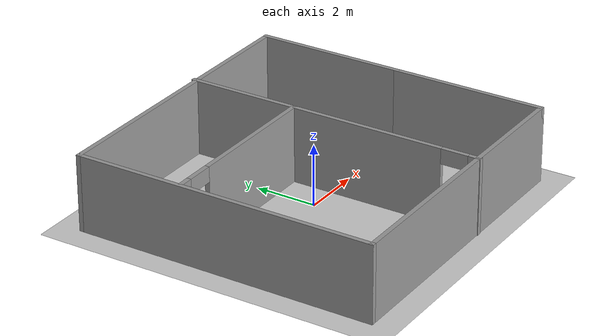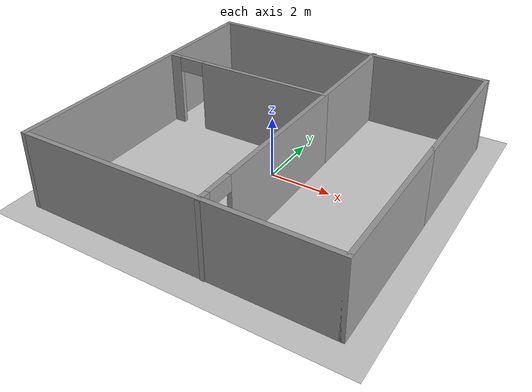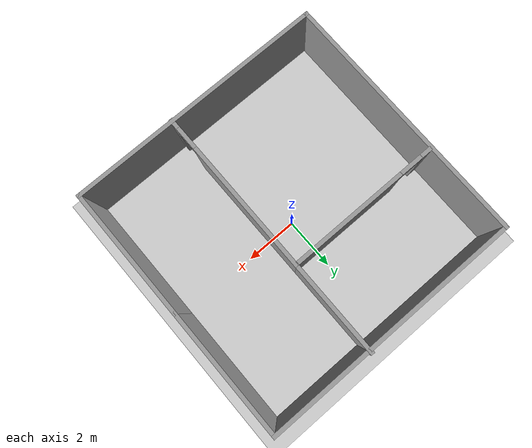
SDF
<sdf version="1.7">
 <world name="default">
  <light name="sun" type="directional">
   <pose>0 0 10 0 -0 0</pose>
   <diffuse>0.8 0.8 0.8 1</diffuse>
   <specular>0.2 0.2 0.2 1</specular>
   <attenuation>
    <range>1000</range>
    <constant>0.9</constant>
    <linear>0.01</linear>
    <quadratic>0.001</quadratic>
   </attenuation>
   <direction>-0.5 0.1 -0.9</direction>
   <spot><inner_angle>0</inner_angle><outer_angle>0</outer_angle><falloff>0</falloff></spot>
  </light>
  <model name="ground_plane">
   <static>1</static>
   <link name="link">
    <collision name="collision">
     <geometry><plane><normal>0 0 1</normal><size>100 100</size></plane></geometry>
     <surface><friction><ode><mu>100</mu><mu2>50</mu2></ode></friction></surface>
    </collision>
    <visual name="visual">
     <cast_shadows>0</cast_shadows>
     <geometry><plane><normal>0 0 1</normal><size>100 100</size></plane></geometry>
     <material>
      <script><uri>file://media/materials/scripts/gazebo.material</uri><name>Gazebo/Grey</name></script>
     </material>
    </visual>
   </link>
  </model>
  <gravity>0 0 -9.8</gravity>
  <magnetic_field>6e-06 2.3e-05 -4.2e-05</magnetic_field>
  <atmosphere type="adiabatic"/>
  <physics type="ode">
   <max_step_size>0.001</max_step_size>
   <real_time_factor>1</real_time_factor>
   <real_time_update_rate>1000</real_time_update_rate>
  </physics>
  <scene><ambient>0.4 0.4 0.4 1</ambient><background>0.7 0.7 0.7 1</background><shadows>1</shadows></scene>
  <audio><device>default</device></audio>
  <spherical_coordinates>
   <surface_model>EARTH_WGS84</surface_model>
   <latitude_deg>0</latitude_deg>
   <longitude_deg>0</longitude_deg>
   <elevation>0</elevation>
   <heading_deg>0</heading_deg>
  </spherical_coordinates>
  <model name="10_x_10_Cleaning">
   <pose>0.003482 0.003116 0 0 -0 0</pose>
   <link name="Wall_10">
    <pose>-1.89866 1.375 0 0 -0 0</pose>
    <visual name="Wall_10_Visual_0">
     <pose>-2.78087 0 1.25 0 -0 0</pose>
     <geometry><box><size>0.438253 0.15 2.5</size></box></geometry>
     <material>
      <script><uri>file://media/materials/scripts/gazebo.material</uri><name>Gazebo/Grey</name></script>
      <ambient>1 1 1 1</ambient>
     </material>
     <meta><layer>0</layer></meta>
    </visual>
    <collision name="Wall_10_Collision_0">
     <geometry><box><size>0.438253 0.15 2.5</size></box></geometry>
     <pose>-2.78087 0 1.25 0 -0 0</pose>
    </collision>
    <visual name="Wall_10_Visual_1">
     <pose>0.669126 0 1.25 0 -0 0</pose>
     <geometry><box><size>4.66175 0.15 2.5</size></box></geometry>
     <material>
      <script><uri>file://media/materials/scripts/gazebo.material</uri><name>Gazebo/Grey</name></script>
      <ambient>1 1 1 1</ambient>
     </material>
     <meta><layer>0</layer></meta>
    </visual>
    <collision name="Wall_10_Collision_1">
     <geometry><box><size>4.66175 0.15 2.5</size></box></geometry>
     <pose>0.669126 0 1.25 0 -0 0</pose>
    </collision>
    <visual name="Wall_10_Visual_2">
     <pose>-2.11175 0 2.25 0 -0 0</pose>
     <geometry><box><size>0.9 0.15 0.5</size></box></geometry>
     <material>
      <script><uri>file://media/materials/scripts/gazebo.material</uri><name>Gazebo/Grey</name></script>
      <ambient>1 1 1 1</ambient>
     </material>
     <meta><layer>0</layer></meta>
    </visual>
    <collision name="Wall_10_Collision_2">
     <geometry><box><size>0.9 0.15 0.5</size></box></geometry>
     <pose>-2.11175 0 2.25 0 -0 0</pose>
    </collision>
   </link>
   <link name="Wall_11">
    <pose>1.02634 -1.8 0 0 -0 -1.5708</pose>
    <visual name="Wall_11_Visual_0">
     <pose>-0.65376 0 1.25 0 -0 0</pose>
     <geometry><box><size>5.19248 0.15 2.5</size></box></geometry>
     <material>
      <script><uri>file://media/materials/scripts/gazebo.material</uri><name>Gazebo/Grey</name></script>
      <ambient>1 1 1 1</ambient>
     </material>
     <meta><layer>0</layer></meta>
    </visual>
    <collision name="Wall_11_Collision_0">
     <geometry><box><size>5.19248 0.15 2.5</size></box></geometry>
     <pose>-0.65376 0 1.25 0 -0 0</pose>
    </collision>
    <visual name="Wall_11_Visual_1">
     <pose>3.04624 0 1.25 0 -0 0</pose>
     <geometry><box><size>0.40752 0.15 2.5</size></box></geometry>
     <material>
      <script><uri>file://media/materials/scripts/gazebo.material</uri><name>Gazebo/Grey</name></script>
      <ambient>1 1 1 1</ambient>
     </material>
     <meta><layer>0</layer></meta>
    </visual>
    <collision name="Wall_11_Collision_1">
     <geometry><box><size>0.40752 0.15 2.5</size></box></geometry>
     <pose>3.04624 0 1.25 0 -0 0</pose>
    </collision>
    <visual name="Wall_11_Visual_2">
     <pose>2.39248 0 2.25 0 -0 0</pose>
     <geometry><box><size>0.9 0.15 0.5</size></box></geometry>
     <material>
      <script><uri>file://media/materials/scripts/gazebo.material</uri><name>Gazebo/Grey</name></script>
      <ambient>1 1 1 1</ambient>
     </material>
     <meta><layer>0</layer></meta>
    </visual>
    <collision name="Wall_11_Collision_2">
     <geometry><box><size>0.9 0.15 0.5</size></box></geometry>
     <pose>2.39248 0 2.25 0 -0 0</pose>
    </collision>
   </link>
   <link name="Wall_13">
    <collision name="Wall_13_Collision">
     <geometry><box><size>3.75 0.15 2.5</size></box></geometry>
     <pose>0 0 1.25 0 -0 0</pose>
    </collision>
    <visual name="Wall_13_Visual">
     <pose>0 0 1.25 0 -0 0</pose>
     <geometry><box><size>3.75 0.15 2.5</size></box></geometry>
     <material>
      <script><uri>file://media/materials/scripts/gazebo.material</uri><name>Gazebo/Grey</name></script>
      <ambient>1 1 1 1</ambient>
     </material>
     <meta><layer>0</layer></meta>
    </visual>
    <pose>1.02634 3.175 0 0 -0 1.5708</pose>
   </link>
   <link name="Wall_3">
    <collision name="Wall_3_Collision">
     <geometry><box><size>5 0.15 2.5</size></box></geometry>
     <pose>0 0 1.25 0 -0 0</pose>
    </collision>
    <visual name="Wall_3_Visual">
     <pose>0 0 1.25 0 -0 0</pose>
     <geometry><box><size>5 0.15 2.5</size></box></geometry>
     <material>
      <script><uri>file://media/materials/scripts/gazebo.material</uri><name>Gazebo/Grey</name></script>
      <ambient>1 1 1 1</ambient>
     </material>
     <meta><layer>0</layer></meta>
    </visual>
    <pose>4.925 2.472 0 0 -0 1.5708</pose>
   </link>
   <link name="Wall_4">
    <collision name="Wall_4_Collision">
     <geometry><box><size>10 0.15 2.5</size></box></geometry>
     <pose>0 0 1.25 0 -0 0</pose>
    </collision>
    <visual name="Wall_4_Visual">
     <pose>0 0 1.25 0 -0 0</pose>
     <geometry><box><size>10 0.15 2.5</size></box></geometry>
     <material>
      <script><uri>file://media/materials/scripts/gazebo.material</uri><name>Gazebo/Grey</name></script>
      <ambient>1 1 1 1</ambient>
     </material>
     <meta><layer>0</layer></meta>
    </visual>
    <pose>0 4.897 0 0 -0 3.14159</pose>
   </link>
   <link name="Wall_5">
    <collision name="Wall_5_Collision">
     <geometry><box><size>10 0.15 2.5</size></box></geometry>
     <pose>0 0 1.25 0 -0 0</pose>
    </collision>
    <visual name="Wall_5_Visual">
     <pose>0 0 1.25 0 -0 0</pose>
     <geometry><box><size>10 0.15 2.5</size></box></geometry>
     <material>
      <script><uri>file://media/materials/scripts/gazebo.material</uri><name>Gazebo/Grey</name></script>
      <ambient>1 1 1 1</ambient>
     </material>
     <meta><layer>0</layer></meta>
    </visual>
    <pose>-4.925 -0.028001 0 0 -0 -1.5708</pose>
   </link>
   <link name="Wall_7">
    <collision name="Wall_7_Collision">
     <geometry><box><size>10 0.15 2.5</size></box></geometry>
     <pose>0 0 1.25 0 -0 0</pose>
    </collision>
    <visual name="Wall_7_Visual">
     <pose>0 0 1.25 0 -0 0</pose>
     <geometry><box><size>10 0.15 2.5</size></box></geometry>
     <material>
      <script><uri>file://media/materials/scripts/gazebo.material</uri><name>Gazebo/Grey</name></script>
      <ambient>1 1 1 1</ambient>
     </material>
     <meta><layer>0</layer></meta>
    </visual>
    <pose>0 -4.953 0 0 -0 0</pose>
   </link>
   <link name="Wall_8">
    <collision name="Wall_8_Collision">
     <geometry><box><size>5.15 0.15 2.5</size></box></geometry>
     <pose>0 0 1.25 0 -0 0</pose>
    </collision>
    <visual name="Wall_8_Visual">
     <pose>0 0 1.25 0 -0 0</pose>
     <geometry><box><size>5.15 0.15 2.5</size></box></geometry>
     <material>
      <script><uri>file://media/materials/scripts/gazebo.material</uri><name>Gazebo/Grey</name></script>
      <ambient>1 1 1 1</ambient>
     </material>
     <meta><layer>0</layer></meta>
    </visual>
    <pose>4.925 -2.453 0 0 -0 1.5708</pose>
   </link>
   <static>1</static>
  </model>
 </world>
</sdf>
